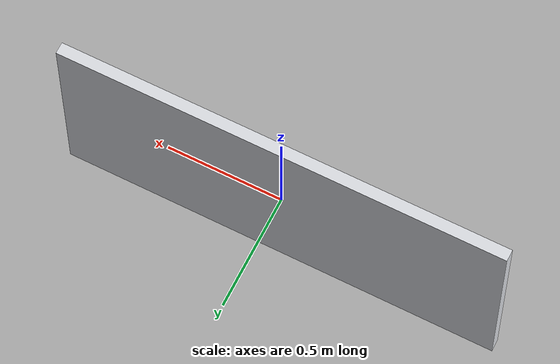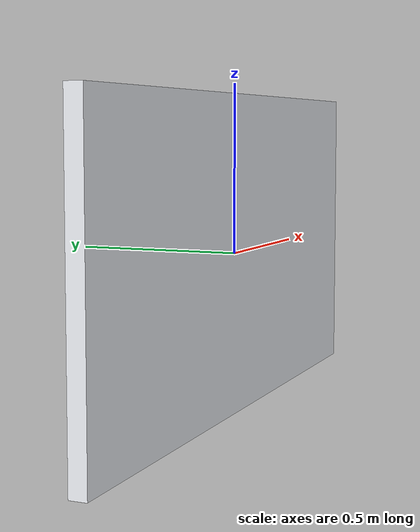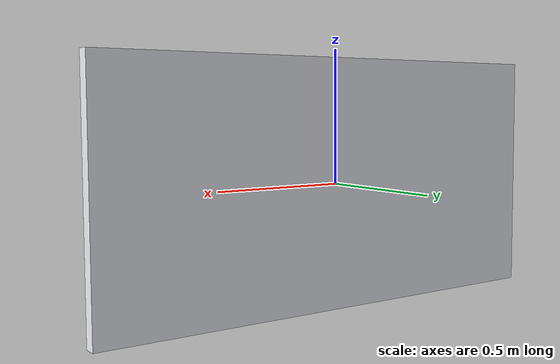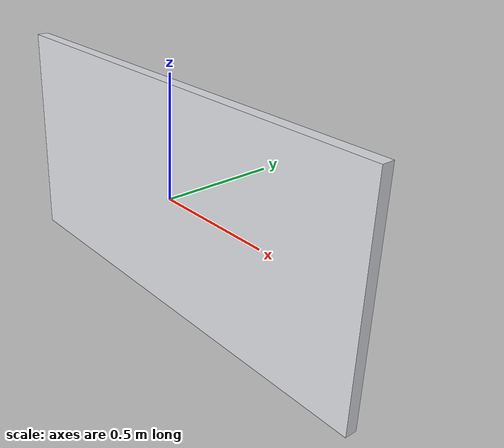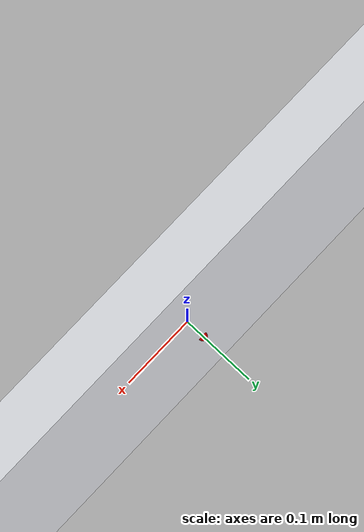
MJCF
<mujoco model="w1_b1_panel_base">
  <worldbody>
    <body name="panel_mount" pos="0 0 0">
      <geom
        name="panel_backplate"
        type="box"
        pos="0 0 0"
        size="0.958 0.025 0.47"
        rgba="0.86 0.87 0.89 1"
        contype="1"
        conaffinity="1"
      />
      <site name="panel_origin" pos="0 0.025 0" size="0.006" rgba="1 0 0 1"/>
    </body>
  </worldbody>
</mujoco>
